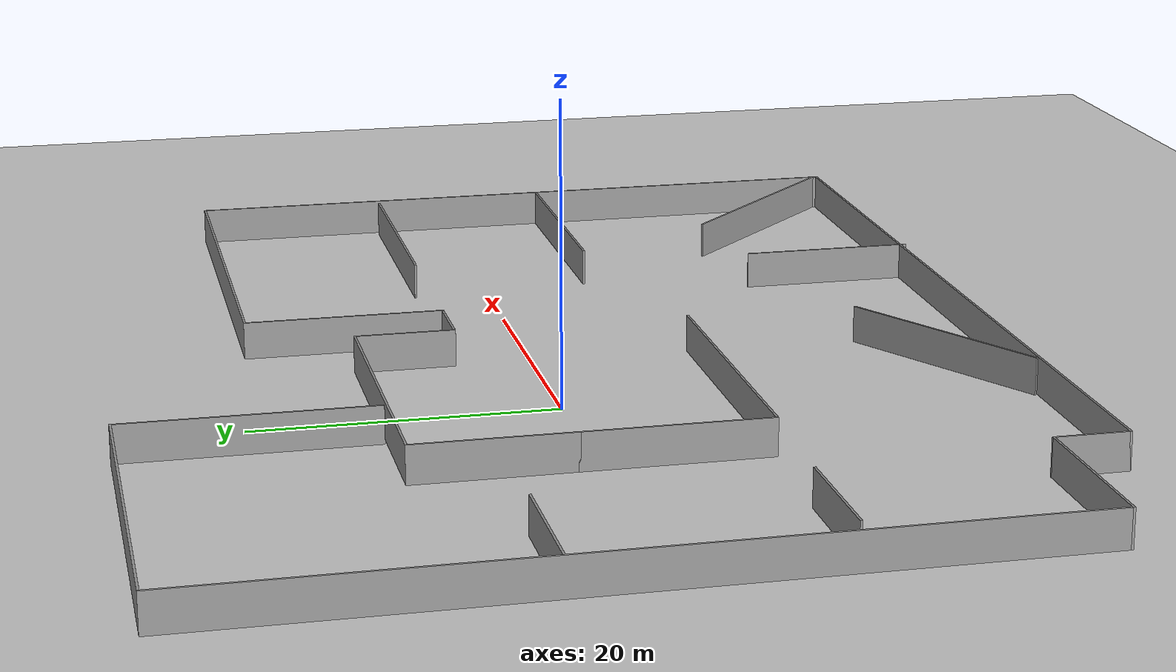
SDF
<sdf version="1.7">
 <world name="default">
  <light name="sun" type="directional">
   <pose>0 0 10 0 -0 0</pose>
   <diffuse>0.8 0.8 0.8 1</diffuse>
   <specular>0.2 0.2 0.2 1</specular>
   <attenuation>
    <range>1000</range>
    <constant>0.9</constant>
    <linear>0.01</linear>
    <quadratic>0.001</quadratic>
   </attenuation>
   <direction>-0.5 0.1 -0.9</direction>
   <spot><inner_angle>0</inner_angle><outer_angle>0</outer_angle><falloff>0</falloff></spot>
  </light>
  <model name="ground_plane">
   <static>1</static>
   <link name="link">
    <collision name="collision">
     <geometry><plane><normal>0 0 1</normal><size>100 100</size></plane></geometry>
     <surface><friction><ode><mu>100</mu><mu2>50</mu2></ode></friction></surface>
    </collision>
    <visual name="visual">
     <cast_shadows>0</cast_shadows>
     <geometry><plane><normal>0 0 1</normal><size>100 100</size></plane></geometry>
     <material>
      <script><uri>file://media/materials/scripts/gazebo.material</uri><name>Gazebo/Grey</name></script>
     </material>
    </visual>
   </link>
  </model>
  <gravity>0 0 -9.8</gravity>
  <magnetic_field>6e-06 2.3e-05 -4.2e-05</magnetic_field>
  <atmosphere type="adiabatic"/>
  <physics type="ode">
   <max_step_size>0.001</max_step_size>
   <real_time_factor>1</real_time_factor>
   <real_time_update_rate>1000</real_time_update_rate>
  </physics>
  <scene><ambient>0.4 0.4 0.4 1</ambient><background>0.7 0.7 0.7 1</background><shadows>1</shadows></scene>
  <audio><device>default</device></audio>
  <spherical_coordinates>
   <surface_model>EARTH_WGS84</surface_model>
   <latitude_deg>0</latitude_deg>
   <longitude_deg>0</longitude_deg>
   <elevation>0</elevation>
   <heading_deg>0</heading_deg>
  </spherical_coordinates>
  <model name="Untitled7">
   <pose>7.45476 -1.21731 0 0 -0 0</pose>
   <link name="Wall_0">
    <collision name="Wall_0_Collision">
     <geometry><box><size>12.25 0.15 2.5</size></box></geometry>
     <pose>0 0 1.25 0 -0 0</pose>
    </collision>
    <visual name="Wall_0_Visual">
     <pose>0 0 1.25 0 -0 0</pose>
     <geometry><box><size>12.25 0.15 2.5</size></box></geometry>
     <material>
      <script><uri>file://media/materials/scripts/gazebo.material</uri><name>Gazebo/Grey</name></script>
      <ambient>1 1 1 1</ambient>
     </material>
     <meta><layer>0</layer></meta>
    </visual>
    <pose>-18.95 -3.46394 0 0 -0 -1.5708</pose>
   </link>
   <link name="Wall_1">
    <collision name="Wall_1_Collision">
     <geometry><box><size>21.75 0.15 2.5</size></box></geometry>
     <pose>0 0 1.25 0 -0 0</pose>
    </collision>
    <visual name="Wall_1_Visual">
     <pose>0 0 1.25 0 -0 0</pose>
     <geometry><box><size>21.75 0.15 2.5</size></box></geometry>
     <material>
      <script><uri>file://media/materials/scripts/gazebo.material</uri><name>Gazebo/Grey</name></script>
      <ambient>1 1 1 1</ambient>
     </material>
     <meta><layer>0</layer></meta>
    </visual>
    <pose>-8.15 -9.51394 0 0 -0 0</pose>
   </link>
   <link name="Wall_10">
    <collision name="Wall_10_Collision">
     <geometry><box><size>64 0.15 2.5</size></box></geometry>
     <pose>0 0 1.25 0 -0 0</pose>
    </collision>
    <visual name="Wall_10_Visual">
     <pose>0 0 1.25 0 -0 0</pose>
     <geometry><box><size>64 0.15 2.5</size></box></geometry>
     <material>
      <script><uri>file://media/materials/scripts/gazebo.material</uri><name>Gazebo/Grey</name></script>
      <ambient>1 1 1 1</ambient>
     </material>
     <meta><layer>0</layer></meta>
    </visual>
    <pose>5.925 -29.1639 0 0 -0 3.14159</pose>
   </link>
   <link name="Wall_11">
    <collision name="Wall_11_Collision">
     <geometry><box><size>5 0.15 2.5</size></box></geometry>
     <pose>0 0 1.25 0 -0 0</pose>
    </collision>
    <visual name="Wall_11_Visual">
     <pose>0 0 1.25 0 -0 0</pose>
     <geometry><box><size>5 0.15 2.5</size></box></geometry>
     <material>
      <script><uri>file://media/materials/scripts/gazebo.material</uri><name>Gazebo/Grey</name></script>
      <ambient>1 1 1 1</ambient>
     </material>
     <meta><layer>0</layer></meta>
    </visual>
    <pose>-26 -26.7389 0 0 -0 1.5708</pose>
   </link>
   <link name="Wall_12">
    <collision name="Wall_12_Collision">
     <geometry><box><size>12 0.15 2.5</size></box></geometry>
     <pose>0 0 1.25 0 -0 0</pose>
    </collision>
    <visual name="Wall_12_Visual">
     <pose>0 0 1.25 0 -0 0</pose>
     <geometry><box><size>12 0.15 2.5</size></box></geometry>
     <material>
      <script><uri>file://media/materials/scripts/gazebo.material</uri><name>Gazebo/Grey</name></script>
      <ambient>1 1 1 1</ambient>
     </material>
     <meta><layer>0</layer></meta>
    </visual>
    <pose>-31.925 -24.3139 0 0 -0 3.14159</pose>
   </link>
   <link name="Wall_13">
    <collision name="Wall_13_Collision">
     <geometry><box><size>54 0.15 2.5</size></box></geometry>
     <pose>0 0 1.25 0 -0 0</pose>
    </collision>
    <visual name="Wall_13_Visual">
     <pose>0 0 1.25 0 -0 0</pose>
     <geometry><box><size>54 0.15 2.5</size></box></geometry>
     <material>
      <script><uri>file://media/materials/scripts/gazebo.material</uri><name>Gazebo/Grey</name></script>
      <ambient>1 1 1 1</ambient>
     </material>
     <meta><layer>0</layer></meta>
    </visual>
    <pose>-37.85 2.61106 0 0 -0 1.5708</pose>
   </link>
   <link name="Wall_14">
    <collision name="Wall_14_Collision">
     <geometry><box><size>26.5 0.15 2.5</size></box></geometry>
     <pose>0 0 1.25 0 -0 0</pose>
    </collision>
    <visual name="Wall_14_Visual">
     <pose>0 0 1.25 0 -0 0</pose>
     <geometry><box><size>26.5 0.15 2.5</size></box></geometry>
     <material>
      <script><uri>file://media/materials/scripts/gazebo.material</uri><name>Gazebo/Grey</name></script>
      <ambient>1 1 1 1</ambient>
     </material>
     <meta><layer>0</layer></meta>
    </visual>
    <pose>-24.675 29.5361 0 0 -0 0</pose>
   </link>
   <link name="Wall_15">
    <collision name="Wall_15_Collision">
     <geometry><box><size>16.5 0.15 2.5</size></box></geometry>
     <pose>0 0 1.25 0 -0 0</pose>
    </collision>
    <visual name="Wall_15_Visual">
     <pose>0 0 1.25 0 -0 0</pose>
     <geometry><box><size>16.5 0.15 2.5</size></box></geometry>
     <material>
      <script><uri>file://media/materials/scripts/gazebo.material</uri><name>Gazebo/Grey</name></script>
      <ambient>1 1 1 1</ambient>
     </material>
     <meta><layer>0</layer></meta>
    </visual>
    <pose>-11.5 21.3611 0 0 -0 -1.5708</pose>
   </link>
   <link name="Wall_17">
    <collision name="Wall_17_Collision">
     <geometry><box><size>18 0.15 2.5</size></box></geometry>
     <pose>0 0 1.25 0 -0 0</pose>
    </collision>
    <visual name="Wall_17_Visual">
     <pose>0 0 1.25 0 -0 0</pose>
     <geometry><box><size>18 0.15 2.5</size></box></geometry>
     <material>
      <script><uri>file://media/materials/scripts/gazebo.material</uri><name>Gazebo/Grey</name></script>
      <ambient>1 1 1 1</ambient>
     </material>
     <meta><layer>0</layer></meta>
    </visual>
    <pose>28.1644 6.36563 0 0 -0 3.14159</pose>
   </link>
   <link name="Wall_19">
    <collision name="Wall_19_Collision">
     <geometry><box><size>17.5 0.15 2.5</size></box></geometry>
     <pose>0 0 1.25 0 -0 0</pose>
    </collision>
    <visual name="Wall_19_Visual">
     <pose>0 0 1.25 0 -0 0</pose>
     <geometry><box><size>17.5 0.15 2.5</size></box></geometry>
     <material>
      <script><uri>file://media/materials/scripts/gazebo.material</uri><name>Gazebo/Grey</name></script>
      <ambient>1 1 1 1</ambient>
     </material>
     <meta><layer>0</layer></meta>
    </visual>
    <pose>28.8414 -6.15833 0 0 -0 3.14159</pose>
   </link>
   <link name="Wall_21">
    <collision name="Wall_21_Collision">
     <geometry><box><size>15.75 0.15 2.5</size></box></geometry>
     <pose>0 0 1.25 0 -0 0</pose>
    </collision>
    <visual name="Wall_21_Visual">
     <pose>0 0 1.25 0 -0 0</pose>
     <geometry><box><size>15.75 0.15 2.5</size></box></geometry>
     <material>
      <script><uri>file://media/materials/scripts/gazebo.material</uri><name>Gazebo/Grey</name></script>
      <ambient>1 1 1 1</ambient>
     </material>
     <meta><layer>0</layer></meta>
    </visual>
    <pose>-4.54359 -25.0292 0 0 -0 0.523599</pose>
   </link>
   <link name="Wall_23">
    <collision name="Wall_23_Collision">
     <geometry><box><size>9.25 0.15 2.5</size></box></geometry>
     <pose>0 0 1.25 0 -0 0</pose>
    </collision>
    <visual name="Wall_23_Visual">
     <pose>0 0 1.25 0 -0 0</pose>
     <geometry><box><size>9.25 0.15 2.5</size></box></geometry>
     <material>
      <script><uri>file://media/materials/scripts/gazebo.material</uri><name>Gazebo/Grey</name></script>
      <ambient>1 1 1 1</ambient>
     </material>
     <meta><layer>0</layer></meta>
    </visual>
    <pose>-33.2197 7.50417 0 0 -0 0</pose>
   </link>
   <link name="Wall_25">
    <collision name="Wall_25_Collision">
     <geometry><box><size>8.75 0.15 2.5</size></box></geometry>
     <pose>0 0 1.25 0 -0 0</pose>
    </collision>
    <visual name="Wall_25_Visual">
     <pose>0 0 1.25 0 -0 0</pose>
     <geometry><box><size>8.75 0.15 2.5</size></box></geometry>
     <material>
      <script><uri>file://media/materials/scripts/gazebo.material</uri><name>Gazebo/Grey</name></script>
      <ambient>1 1 1 1</ambient>
     </material>
     <meta><layer>0</layer></meta>
    </visual>
    <pose>-32.1888 -9.147 0 0 -0 0</pose>
   </link>
   <link name="Wall_28">
    <collision name="Wall_28_Collision">
     <geometry><box><size>17.5 0.15 2.5</size></box></geometry>
     <pose>0 0 1.25 0 -0 0</pose>
    </collision>
    <visual name="Wall_28_Visual">
     <pose>0 0 1.25 0 -0 0</pose>
     <geometry><box><size>17.5 0.15 2.5</size></box></geometry>
     <material>
      <script><uri>file://media/materials/scripts/gazebo.material</uri><name>Gazebo/Grey</name></script>
      <ambient>1 1 1 1</ambient>
     </material>
     <meta><layer>0</layer></meta>
    </visual>
    <pose>31.6669 -22.6527 0 0 -0 2.35619</pose>
   </link>
   <link name="Wall_3">
    <collision name="Wall_3_Collision">
     <geometry><box><size>10.5 0.15 2.5</size></box></geometry>
     <pose>0 0 1.25 0 -0 0</pose>
    </collision>
    <visual name="Wall_3_Visual">
     <pose>0 0 1.25 0 -0 0</pose>
     <geometry><box><size>10.5 0.15 2.5</size></box></geometry>
     <material>
      <script><uri>file://media/materials/scripts/gazebo.material</uri><name>Gazebo/Grey</name></script>
      <ambient>1 1 1 1</ambient>
     </material>
     <meta><layer>0</layer></meta>
    </visual>
    <pose>-18.95 7.76106 0 0 -0 1.5708</pose>
   </link>
   <link name="Wall_31">
    <collision name="Wall_31_Collision">
     <geometry><box><size>12 0.15 2.5</size></box></geometry>
     <pose>0 0 1.25 0 -0 0</pose>
    </collision>
    <visual name="Wall_31_Visual">
     <pose>0 0 1.25 0 -0 0</pose>
     <geometry><box><size>12 0.15 2.5</size></box></geometry>
     <material>
      <script><uri>file://media/materials/scripts/gazebo.material</uri><name>Gazebo/Grey</name></script>
      <ambient>1 1 1 1</ambient>
     </material>
     <meta><layer>0</layer></meta>
    </visual>
    <pose>16.738 -23.6111 0 0 -0 -1.5708</pose>
   </link>
   <link name="Wall_4">
    <collision name="Wall_4_Collision">
     <geometry><box><size>22 0.15 2.5</size></box></geometry>
     <pose>0 0 1.25 0 -0 0</pose>
    </collision>
    <visual name="Wall_4_Visual">
     <pose>0 0 1.25 0 -0 0</pose>
     <geometry><box><size>22 0.15 2.5</size></box></geometry>
     <material>
      <script><uri>file://media/materials/scripts/gazebo.material</uri><name>Gazebo/Grey</name></script>
      <ambient>1 1 1 1</ambient>
     </material>
     <meta><layer>0</layer></meta>
    </visual>
    <pose>-8.025 12.9361 0 0 -0 0</pose>
   </link>
   <link name="Wall_5">
    <collision name="Wall_5_Collision">
     <geometry><box><size>6.75 0.15 2.5</size></box></geometry>
     <pose>0 0 1.25 0 -0 0</pose>
    </collision>
    <visual name="Wall_5_Visual">
     <pose>0 0 1.25 0 -0 0</pose>
     <geometry><box><size>6.75 0.15 2.5</size></box></geometry>
     <material>
      <script><uri>file://media/materials/scripts/gazebo.material</uri><name>Gazebo/Grey</name></script>
      <ambient>1 1 1 1</ambient>
     </material>
     <meta><layer>0</layer></meta>
    </visual>
    <pose>2.9 9.63606 0 0 -0 -1.5708</pose>
   </link>
   <link name="Wall_6">
    <collision name="Wall_6_Collision">
     <geometry><box><size>4.75 0.15 2.5</size></box></geometry>
     <pose>0 0 1.25 0 -0 0</pose>
    </collision>
    <visual name="Wall_6_Visual">
     <pose>0 0 1.25 0 -0 0</pose>
     <geometry><box><size>4.75 0.15 2.5</size></box></geometry>
     <material>
      <script><uri>file://media/materials/scripts/gazebo.material</uri><name>Gazebo/Grey</name></script>
      <ambient>1 1 1 1</ambient>
     </material>
     <meta><layer>0</layer></meta>
    </visual>
    <pose>5.2 6.33606 0 0 -0 0</pose>
   </link>
   <link name="Wall_7">
    <collision name="Wall_7_Collision">
     <geometry><box><size>13.5 0.15 2.5</size></box></geometry>
     <pose>0 0 1.25 0 -0 0</pose>
    </collision>
    <visual name="Wall_7_Visual">
     <pose>0 0 1.25 0 -0 0</pose>
     <geometry><box><size>13.5 0.15 2.5</size></box></geometry>
     <material>
      <script><uri>file://media/materials/scripts/gazebo.material</uri><name>Gazebo/Grey</name></script>
      <ambient>1 1 1 1</ambient>
     </material>
     <meta><layer>0</layer></meta>
    </visual>
    <pose>7.5 13.0111 0 0 -0 1.5708</pose>
   </link>
   <link name="Wall_8">
    <collision name="Wall_8_Collision">
     <geometry><box><size>30.5 0.15 2.5</size></box></geometry>
     <pose>0 0 1.25 0 -0 0</pose>
    </collision>
    <visual name="Wall_8_Visual">
     <pose>0 0 1.25 0 -0 0</pose>
     <geometry><box><size>30.5 0.15 2.5</size></box></geometry>
     <material>
      <script><uri>file://media/materials/scripts/gazebo.material</uri><name>Gazebo/Grey</name></script>
      <ambient>1 1 1 1</ambient>
     </material>
     <meta><layer>0</layer></meta>
    </visual>
    <pose>22.675 19.6861 0 0 -0 0</pose>
   </link>
   <link name="Wall_9">
    <collision name="Wall_9_Collision">
     <geometry><box><size>49 0.15 2.5</size></box></geometry>
     <pose>0 0 1.25 0 -0 0</pose>
    </collision>
    <visual name="Wall_9_Visual">
     <pose>0 0 1.25 0 -0 0</pose>
     <geometry><box><size>49 0.15 2.5</size></box></geometry>
     <material>
      <script><uri>file://media/materials/scripts/gazebo.material</uri><name>Gazebo/Grey</name></script>
      <ambient>1 1 1 1</ambient>
     </material>
     <meta><layer>0</layer></meta>
    </visual>
    <pose>37.85 -4.73894 0 0 -0 -1.5708</pose>
   </link>
   <static>1</static>
  </model>
 </world>
</sdf>
